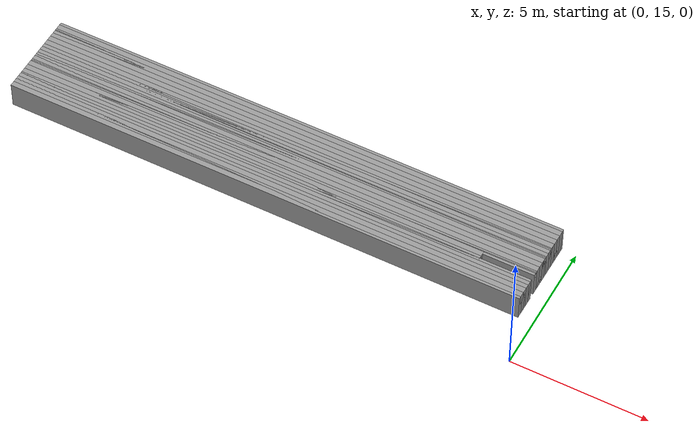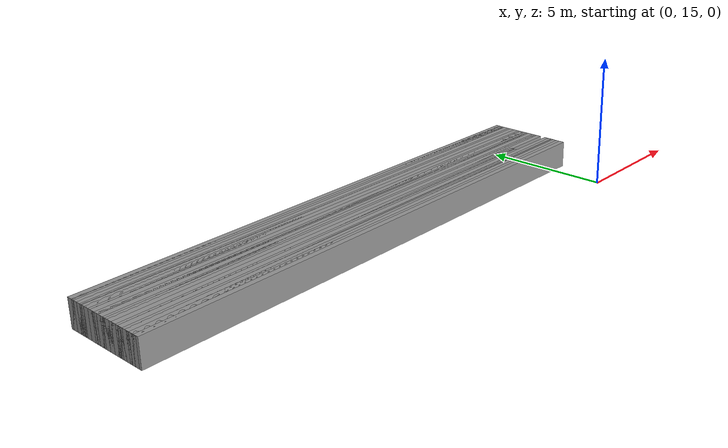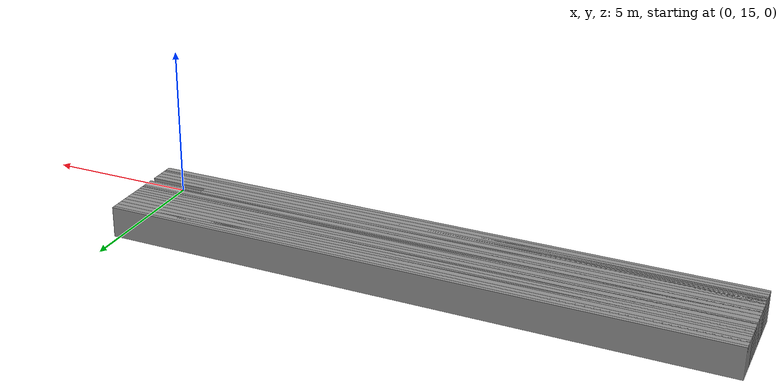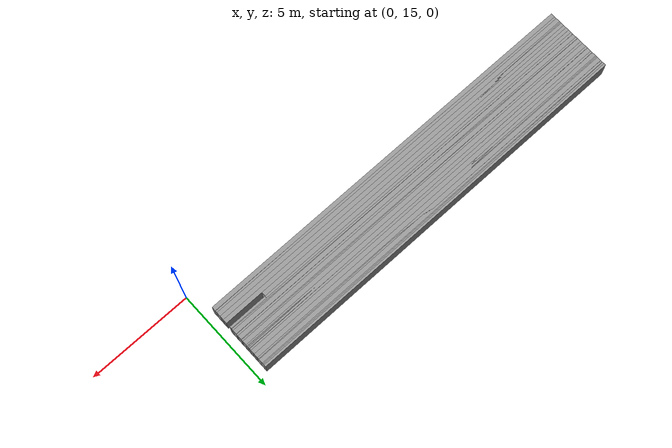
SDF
<sdf version="1.6">
 <world name="GridMap">
  <model name="GridMap">
   <link name="Wall_(101.5,165.0)">
    <collision name="Wall_(101.5,165.0)_Collision">
     <geometry><box><size>19.5 0.2 1.0</size></box></geometry>
     <pose>-10.15 16.5 0.5 0 -0 0</pose>
    </collision>
    <visual name="Wall_(101.5,165.0)_Visual">
     <geometry><box><size>19.5 0.2 1.0</size></box></geometry>
     <pose>-10.15 16.5 0.5 0 -0 0</pose>
     <material>
      <script><uri>file://media/materials/scripts/gazebo.material</uri><name>Gazebo/Grey</name></script>
      <ambient>1 1 1 1</ambient>
     </material>
     <meta><layer>0</layer></meta>
    </visual>
    <pose>0 0 0.5 0 -0 0</pose>
   </link>
   <link name="Wall_(101.5,166.0)">
    <collision name="Wall_(101.5,166.0)_Collision">
     <geometry><box><size>19.5 0.2 1.0</size></box></geometry>
     <pose>-10.15 16.6 0.5 0 -0 0</pose>
    </collision>
    <visual name="Wall_(101.5,166.0)_Visual">
     <geometry><box><size>19.5 0.2 1.0</size></box></geometry>
     <pose>-10.15 16.6 0.5 0 -0 0</pose>
     <material>
      <script><uri>file://media/materials/scripts/gazebo.material</uri><name>Gazebo/Grey</name></script>
      <ambient>1 1 1 1</ambient>
     </material>
     <meta><layer>0</layer></meta>
    </visual>
    <pose>0 0 0.5 0 -0 0</pose>
   </link>
   <link name="Wall_(101.5,167.0)">
    <collision name="Wall_(101.5,167.0)_Collision">
     <geometry><box><size>19.5 0.2 1.0</size></box></geometry>
     <pose>-10.15 16.7 0.5 0 -0 0</pose>
    </collision>
    <visual name="Wall_(101.5,167.0)_Visual">
     <geometry><box><size>19.5 0.2 1.0</size></box></geometry>
     <pose>-10.15 16.7 0.5 0 -0 0</pose>
     <material>
      <script><uri>file://media/materials/scripts/gazebo.material</uri><name>Gazebo/Grey</name></script>
      <ambient>1 1 1 1</ambient>
     </material>
     <meta><layer>0</layer></meta>
    </visual>
    <pose>0 0 0.5 0 -0 0</pose>
   </link>
   <link name="Wall_(101.5,168.0)">
    <collision name="Wall_(101.5,168.0)_Collision">
     <geometry><box><size>19.5 0.2 1.0</size></box></geometry>
     <pose>-10.15 16.8 0.5 0 -0 0</pose>
    </collision>
    <visual name="Wall_(101.5,168.0)_Visual">
     <geometry><box><size>19.5 0.2 1.0</size></box></geometry>
     <pose>-10.15 16.8 0.5 0 -0 0</pose>
     <material>
      <script><uri>file://media/materials/scripts/gazebo.material</uri><name>Gazebo/Grey</name></script>
      <ambient>1 1 1 1</ambient>
     </material>
     <meta><layer>0</layer></meta>
    </visual>
    <pose>0 0 0.5 0 -0 0</pose>
   </link>
   <link name="Wall_(101.5,169.0)">
    <collision name="Wall_(101.5,169.0)_Collision">
     <geometry><box><size>19.5 0.2 1.0</size></box></geometry>
     <pose>-10.15 16.900000000000002 0.5 0 -0 0</pose>
    </collision>
    <visual name="Wall_(101.5,169.0)_Visual">
     <geometry><box><size>19.5 0.2 1.0</size></box></geometry>
     <pose>-10.15 16.900000000000002 0.5 0 -0 0</pose>
     <material>
      <script><uri>file://media/materials/scripts/gazebo.material</uri><name>Gazebo/Grey</name></script>
      <ambient>1 1 1 1</ambient>
     </material>
     <meta><layer>0</layer></meta>
    </visual>
    <pose>0 0 0.5 0 -0 0</pose>
   </link>
   <link name="Wall_(101.5,170.0)">
    <collision name="Wall_(101.5,170.0)_Collision">
     <geometry><box><size>19.5 0.2 1.0</size></box></geometry>
     <pose>-10.15 17.0 0.5 0 -0 0</pose>
    </collision>
    <visual name="Wall_(101.5,170.0)_Visual">
     <geometry><box><size>19.5 0.2 1.0</size></box></geometry>
     <pose>-10.15 17.0 0.5 0 -0 0</pose>
     <material>
      <script><uri>file://media/materials/scripts/gazebo.material</uri><name>Gazebo/Grey</name></script>
      <ambient>1 1 1 1</ambient>
     </material>
     <meta><layer>0</layer></meta>
    </visual>
    <pose>0 0 0.5 0 -0 0</pose>
   </link>
   <link name="Wall_(101.5,171.0)">
    <collision name="Wall_(101.5,171.0)_Collision">
     <geometry><box><size>19.5 0.2 1.0</size></box></geometry>
     <pose>-10.15 17.1 0.5 0 -0 0</pose>
    </collision>
    <visual name="Wall_(101.5,171.0)_Visual">
     <geometry><box><size>19.5 0.2 1.0</size></box></geometry>
     <pose>-10.15 17.1 0.5 0 -0 0</pose>
     <material>
      <script><uri>file://media/materials/scripts/gazebo.material</uri><name>Gazebo/Grey</name></script>
      <ambient>1 1 1 1</ambient>
     </material>
     <meta><layer>0</layer></meta>
    </visual>
    <pose>0 0 0.5 0 -0 0</pose>
   </link>
   <link name="Wall_(101.5,172.0)">
    <collision name="Wall_(101.5,172.0)_Collision">
     <geometry><box><size>19.5 0.2 1.0</size></box></geometry>
     <pose>-10.15 17.2 0.5 0 -0 0</pose>
    </collision>
    <visual name="Wall_(101.5,172.0)_Visual">
     <geometry><box><size>19.5 0.2 1.0</size></box></geometry>
     <pose>-10.15 17.2 0.5 0 -0 0</pose>
     <material>
      <script><uri>file://media/materials/scripts/gazebo.material</uri><name>Gazebo/Grey</name></script>
      <ambient>1 1 1 1</ambient>
     </material>
     <meta><layer>0</layer></meta>
    </visual>
    <pose>0 0 0.5 0 -0 0</pose>
   </link>
   <link name="Wall_(111.0,173.0)">
    <collision name="Wall_(111.0,173.0)_Collision">
     <geometry><box><size>17.6 0.2 1.0</size></box></geometry>
     <pose>-11.100000000000001 17.3 0.5 0 -0 0</pose>
    </collision>
    <visual name="Wall_(111.0,173.0)_Visual">
     <geometry><box><size>17.6 0.2 1.0</size></box></geometry>
     <pose>-11.100000000000001 17.3 0.5 0 -0 0</pose>
     <material>
      <script><uri>file://media/materials/scripts/gazebo.material</uri><name>Gazebo/Grey</name></script>
      <ambient>1 1 1 1</ambient>
     </material>
     <meta><layer>0</layer></meta>
    </visual>
    <pose>0 0 0.5 0 -0 0</pose>
   </link>
   <link name="Wall_(111.0,174.0)">
    <collision name="Wall_(111.0,174.0)_Collision">
     <geometry><box><size>17.6 0.2 1.0</size></box></geometry>
     <pose>-11.100000000000001 17.400000000000002 0.5 0 -0 0</pose>
    </collision>
    <visual name="Wall_(111.0,174.0)_Visual">
     <geometry><box><size>17.6 0.2 1.0</size></box></geometry>
     <pose>-11.100000000000001 17.400000000000002 0.5 0 -0 0</pose>
     <material>
      <script><uri>file://media/materials/scripts/gazebo.material</uri><name>Gazebo/Grey</name></script>
      <ambient>1 1 1 1</ambient>
     </material>
     <meta><layer>0</layer></meta>
    </visual>
    <pose>0 0 0.5 0 -0 0</pose>
   </link>
   <link name="Wall_(111.0,175.0)">
    <collision name="Wall_(111.0,175.0)_Collision">
     <geometry><box><size>17.6 0.2 1.0</size></box></geometry>
     <pose>-11.100000000000001 17.5 0.5 0 -0 0</pose>
    </collision>
    <visual name="Wall_(111.0,175.0)_Visual">
     <geometry><box><size>17.6 0.2 1.0</size></box></geometry>
     <pose>-11.100000000000001 17.5 0.5 0 -0 0</pose>
     <material>
      <script><uri>file://media/materials/scripts/gazebo.material</uri><name>Gazebo/Grey</name></script>
      <ambient>1 1 1 1</ambient>
     </material>
     <meta><layer>0</layer></meta>
    </visual>
    <pose>0 0 0.5 0 -0 0</pose>
   </link>
   <link name="Wall_(101.5,176.0)">
    <collision name="Wall_(101.5,176.0)_Collision">
     <geometry><box><size>19.5 0.2 1.0</size></box></geometry>
     <pose>-10.15 17.6 0.5 0 -0 0</pose>
    </collision>
    <visual name="Wall_(101.5,176.0)_Visual">
     <geometry><box><size>19.5 0.2 1.0</size></box></geometry>
     <pose>-10.15 17.6 0.5 0 -0 0</pose>
     <material>
      <script><uri>file://media/materials/scripts/gazebo.material</uri><name>Gazebo/Grey</name></script>
      <ambient>1 1 1 1</ambient>
     </material>
     <meta><layer>0</layer></meta>
    </visual>
    <pose>0 0 0.5 0 -0 0</pose>
   </link>
   <link name="Wall_(101.5,177.0)">
    <collision name="Wall_(101.5,177.0)_Collision">
     <geometry><box><size>19.5 0.2 1.0</size></box></geometry>
     <pose>-10.15 17.7 0.5 0 -0 0</pose>
    </collision>
    <visual name="Wall_(101.5,177.0)_Visual">
     <geometry><box><size>19.5 0.2 1.0</size></box></geometry>
     <pose>-10.15 17.7 0.5 0 -0 0</pose>
     <material>
      <script><uri>file://media/materials/scripts/gazebo.material</uri><name>Gazebo/Grey</name></script>
      <ambient>1 1 1 1</ambient>
     </material>
     <meta><layer>0</layer></meta>
    </visual>
    <pose>0 0 0.5 0 -0 0</pose>
   </link>
   <link name="Wall_(101.5,178.0)">
    <collision name="Wall_(101.5,178.0)_Collision">
     <geometry><box><size>19.5 0.2 1.0</size></box></geometry>
     <pose>-10.15 17.8 0.5 0 -0 0</pose>
    </collision>
    <visual name="Wall_(101.5,178.0)_Visual">
     <geometry><box><size>19.5 0.2 1.0</size></box></geometry>
     <pose>-10.15 17.8 0.5 0 -0 0</pose>
     <material>
      <script><uri>file://media/materials/scripts/gazebo.material</uri><name>Gazebo/Grey</name></script>
      <ambient>1 1 1 1</ambient>
     </material>
     <meta><layer>0</layer></meta>
    </visual>
    <pose>0 0 0.5 0 -0 0</pose>
   </link>
   <link name="Wall_(101.5,179.0)">
    <collision name="Wall_(101.5,179.0)_Collision">
     <geometry><box><size>19.5 0.2 1.0</size></box></geometry>
     <pose>-10.15 17.900000000000002 0.5 0 -0 0</pose>
    </collision>
    <visual name="Wall_(101.5,179.0)_Visual">
     <geometry><box><size>19.5 0.2 1.0</size></box></geometry>
     <pose>-10.15 17.900000000000002 0.5 0 -0 0</pose>
     <material>
      <script><uri>file://media/materials/scripts/gazebo.material</uri><name>Gazebo/Grey</name></script>
      <ambient>1 1 1 1</ambient>
     </material>
     <meta><layer>0</layer></meta>
    </visual>
    <pose>0 0 0.5 0 -0 0</pose>
   </link>
   <link name="Wall_(101.5,180.0)">
    <collision name="Wall_(101.5,180.0)_Collision">
     <geometry><box><size>19.5 0.2 1.0</size></box></geometry>
     <pose>-10.15 18.0 0.5 0 -0 0</pose>
    </collision>
    <visual name="Wall_(101.5,180.0)_Visual">
     <geometry><box><size>19.5 0.2 1.0</size></box></geometry>
     <pose>-10.15 18.0 0.5 0 -0 0</pose>
     <material>
      <script><uri>file://media/materials/scripts/gazebo.material</uri><name>Gazebo/Grey</name></script>
      <ambient>1 1 1 1</ambient>
     </material>
     <meta><layer>0</layer></meta>
    </visual>
    <pose>0 0 0.5 0 -0 0</pose>
   </link>
   <link name="Wall_(101.5,181.0)">
    <collision name="Wall_(101.5,181.0)_Collision">
     <geometry><box><size>19.5 0.2 1.0</size></box></geometry>
     <pose>-10.15 18.1 0.5 0 -0 0</pose>
    </collision>
    <visual name="Wall_(101.5,181.0)_Visual">
     <geometry><box><size>19.5 0.2 1.0</size></box></geometry>
     <pose>-10.15 18.1 0.5 0 -0 0</pose>
     <material>
      <script><uri>file://media/materials/scripts/gazebo.material</uri><name>Gazebo/Grey</name></script>
      <ambient>1 1 1 1</ambient>
     </material>
     <meta><layer>0</layer></meta>
    </visual>
    <pose>0 0 0.5 0 -0 0</pose>
   </link>
   <link name="Wall_(101.5,182.0)">
    <collision name="Wall_(101.5,182.0)_Collision">
     <geometry><box><size>19.5 0.2 1.0</size></box></geometry>
     <pose>-10.15 18.2 0.5 0 -0 0</pose>
    </collision>
    <visual name="Wall_(101.5,182.0)_Visual">
     <geometry><box><size>19.5 0.2 1.0</size></box></geometry>
     <pose>-10.15 18.2 0.5 0 -0 0</pose>
     <material>
      <script><uri>file://media/materials/scripts/gazebo.material</uri><name>Gazebo/Grey</name></script>
      <ambient>1 1 1 1</ambient>
     </material>
     <meta><layer>0</layer></meta>
    </visual>
    <pose>0 0 0.5 0 -0 0</pose>
   </link>
   <link name="Wall_(101.5,183.0)">
    <collision name="Wall_(101.5,183.0)_Collision">
     <geometry><box><size>19.5 0.2 1.0</size></box></geometry>
     <pose>-10.15 18.3 0.5 0 -0 0</pose>
    </collision>
    <visual name="Wall_(101.5,183.0)_Visual">
     <geometry><box><size>19.5 0.2 1.0</size></box></geometry>
     <pose>-10.15 18.3 0.5 0 -0 0</pose>
     <material>
      <script><uri>file://media/materials/scripts/gazebo.material</uri><name>Gazebo/Grey</name></script>
      <ambient>1 1 1 1</ambient>
     </material>
     <meta><layer>0</layer></meta>
    </visual>
    <pose>0 0 0.5 0 -0 0</pose>
   </link>
   <link name="Wall_(101.5,184.0)">
    <collision name="Wall_(101.5,184.0)_Collision">
     <geometry><box><size>19.5 0.2 1.0</size></box></geometry>
     <pose>-10.15 18.400000000000002 0.5 0 -0 0</pose>
    </collision>
    <visual name="Wall_(101.5,184.0)_Visual">
     <geometry><box><size>19.5 0.2 1.0</size></box></geometry>
     <pose>-10.15 18.400000000000002 0.5 0 -0 0</pose>
     <material>
      <script><uri>file://media/materials/scripts/gazebo.material</uri><name>Gazebo/Grey</name></script>
      <ambient>1 1 1 1</ambient>
     </material>
     <meta><layer>0</layer></meta>
    </visual>
    <pose>0 0 0.5 0 -0 0</pose>
   </link>
   <link name="Wall_(101.5,185.0)">
    <collision name="Wall_(101.5,185.0)_Collision">
     <geometry><box><size>19.5 0.2 1.0</size></box></geometry>
     <pose>-10.15 18.5 0.5 0 -0 0</pose>
    </collision>
    <visual name="Wall_(101.5,185.0)_Visual">
     <geometry><box><size>19.5 0.2 1.0</size></box></geometry>
     <pose>-10.15 18.5 0.5 0 -0 0</pose>
     <material>
      <script><uri>file://media/materials/scripts/gazebo.material</uri><name>Gazebo/Grey</name></script>
      <ambient>1 1 1 1</ambient>
     </material>
     <meta><layer>0</layer></meta>
    </visual>
    <pose>0 0 0.5 0 -0 0</pose>
   </link>
   <link name="Wall_(101.5,186.0)">
    <collision name="Wall_(101.5,186.0)_Collision">
     <geometry><box><size>19.5 0.2 1.0</size></box></geometry>
     <pose>-10.15 18.6 0.5 0 -0 0</pose>
    </collision>
    <visual name="Wall_(101.5,186.0)_Visual">
     <geometry><box><size>19.5 0.2 1.0</size></box></geometry>
     <pose>-10.15 18.6 0.5 0 -0 0</pose>
     <material>
      <script><uri>file://media/materials/scripts/gazebo.material</uri><name>Gazebo/Grey</name></script>
      <ambient>1 1 1 1</ambient>
     </material>
     <meta><layer>0</layer></meta>
    </visual>
    <pose>0 0 0.5 0 -0 0</pose>
   </link>
   <link name="Wall_(101.5,187.0)">
    <collision name="Wall_(101.5,187.0)_Collision">
     <geometry><box><size>19.5 0.2 1.0</size></box></geometry>
     <pose>-10.15 18.7 0.5 0 -0 0</pose>
    </collision>
    <visual name="Wall_(101.5,187.0)_Visual">
     <geometry><box><size>19.5 0.2 1.0</size></box></geometry>
     <pose>-10.15 18.7 0.5 0 -0 0</pose>
     <material>
      <script><uri>file://media/materials/scripts/gazebo.material</uri><name>Gazebo/Grey</name></script>
      <ambient>1 1 1 1</ambient>
     </material>
     <meta><layer>0</layer></meta>
    </visual>
    <pose>0 0 0.5 0 -0 0</pose>
   </link>
   <link name="Wall_(101.5,188.0)">
    <collision name="Wall_(101.5,188.0)_Collision">
     <geometry><box><size>19.5 0.2 1.0</size></box></geometry>
     <pose>-10.15 18.8 0.5 0 -0 0</pose>
    </collision>
    <visual name="Wall_(101.5,188.0)_Visual">
     <geometry><box><size>19.5 0.2 1.0</size></box></geometry>
     <pose>-10.15 18.8 0.5 0 -0 0</pose>
     <material>
      <script><uri>file://media/materials/scripts/gazebo.material</uri><name>Gazebo/Grey</name></script>
      <ambient>1 1 1 1</ambient>
     </material>
     <meta><layer>0</layer></meta>
    </visual>
    <pose>0 0 0.5 0 -0 0</pose>
   </link>
   <link name="Wall_(101.5,189.0)">
    <collision name="Wall_(101.5,189.0)_Collision">
     <geometry><box><size>19.5 0.2 1.0</size></box></geometry>
     <pose>-10.15 18.900000000000002 0.5 0 -0 0</pose>
    </collision>
    <visual name="Wall_(101.5,189.0)_Visual">
     <geometry><box><size>19.5 0.2 1.0</size></box></geometry>
     <pose>-10.15 18.900000000000002 0.5 0 -0 0</pose>
     <material>
      <script><uri>file://media/materials/scripts/gazebo.material</uri><name>Gazebo/Grey</name></script>
      <ambient>1 1 1 1</ambient>
     </material>
     <meta><layer>0</layer></meta>
    </visual>
    <pose>0 0 0.5 0 -0 0</pose>
   </link>
   <link name="Wall_(101.5,190.0)">
    <collision name="Wall_(101.5,190.0)_Collision">
     <geometry><box><size>19.5 0.2 1.0</size></box></geometry>
     <pose>-10.15 19.0 0.5 0 -0 0</pose>
    </collision>
    <visual name="Wall_(101.5,190.0)_Visual">
     <geometry><box><size>19.5 0.2 1.0</size></box></geometry>
     <pose>-10.15 19.0 0.5 0 -0 0</pose>
     <material>
      <script><uri>file://media/materials/scripts/gazebo.material</uri><name>Gazebo/Grey</name></script>
      <ambient>1 1 1 1</ambient>
     </material>
     <meta><layer>0</layer></meta>
    </visual>
    <pose>0 0 0.5 0 -0 0</pose>
   </link>
   <link name="Wall_(101.5,191.0)">
    <collision name="Wall_(101.5,191.0)_Collision">
     <geometry><box><size>19.5 0.2 1.0</size></box></geometry>
     <pose>-10.15 19.1 0.5 0 -0 0</pose>
    </collision>
    <visual name="Wall_(101.5,191.0)_Visual">
     <geometry><box><size>19.5 0.2 1.0</size></box></geometry>
     <pose>-10.15 19.1 0.5 0 -0 0</pose>
     <material>
      <script><uri>file://media/materials/scripts/gazebo.material</uri><name>Gazebo/Grey</name></script>
      <ambient>1 1 1 1</ambient>
     </material>
     <meta><layer>0</layer></meta>
    </visual>
    <pose>0 0 0.5 0 -0 0</pose>
   </link>
   <link name="Wall_(101.5,192.0)">
    <collision name="Wall_(101.5,192.0)_Collision">
     <geometry><box><size>19.5 0.2 1.0</size></box></geometry>
     <pose>-10.15 19.200000000000003 0.5 0 -0 0</pose>
    </collision>
    <visual name="Wall_(101.5,192.0)_Visual">
     <geometry><box><size>19.5 0.2 1.0</size></box></geometry>
     <pose>-10.15 19.200000000000003 0.5 0 -0 0</pose>
     <material>
      <script><uri>file://media/materials/scripts/gazebo.material</uri><name>Gazebo/Grey</name></script>
      <ambient>1 1 1 1</ambient>
     </material>
     <meta><layer>0</layer></meta>
    </visual>
    <pose>0 0 0.5 0 -0 0</pose>
   </link>
   <link name="Wall_(101.5,193.0)">
    <collision name="Wall_(101.5,193.0)_Collision">
     <geometry><box><size>19.5 0.2 1.0</size></box></geometry>
     <pose>-10.15 19.3 0.5 0 -0 0</pose>
    </collision>
    <visual name="Wall_(101.5,193.0)_Visual">
     <geometry><box><size>19.5 0.2 1.0</size></box></geometry>
     <pose>-10.15 19.3 0.5 0 -0 0</pose>
     <material>
      <script><uri>file://media/materials/scripts/gazebo.material</uri><name>Gazebo/Grey</name></script>
      <ambient>1 1 1 1</ambient>
     </material>
     <meta><layer>0</layer></meta>
    </visual>
    <pose>0 0 0.5 0 -0 0</pose>
   </link>
   <link name="Wall_(101.5,194.0)">
    <collision name="Wall_(101.5,194.0)_Collision">
     <geometry><box><size>19.5 0.2 1.0</size></box></geometry>
     <pose>-10.15 19.400000000000002 0.5 0 -0 0</pose>
    </collision>
    <visual name="Wall_(101.5,194.0)_Visual">
     <geometry><box><size>19.5 0.2 1.0</size></box></geometry>
     <pose>-10.15 19.400000000000002 0.5 0 -0 0</pose>
     <material>
      <script><uri>file://media/materials/scripts/gazebo.material</uri><name>Gazebo/Grey</name></script>
      <ambient>1 1 1 1</ambient>
     </material>
     <meta><layer>0</layer></meta>
    </visual>
    <pose>0 0 0.5 0 -0 0</pose>
   </link>
   <link name="Wall_(101.5,195.0)">
    <collision name="Wall_(101.5,195.0)_Collision">
     <geometry><box><size>19.5 0.2 1.0</size></box></geometry>
     <pose>-10.15 19.5 0.5 0 -0 0</pose>
    </collision>
    <visual name="Wall_(101.5,195.0)_Visual">
     <geometry><box><size>19.5 0.2 1.0</size></box></geometry>
     <pose>-10.15 19.5 0.5 0 -0 0</pose>
     <material>
      <script><uri>file://media/materials/scripts/gazebo.material</uri><name>Gazebo/Grey</name></script>
      <ambient>1 1 1 1</ambient>
     </material>
     <meta><layer>0</layer></meta>
    </visual>
    <pose>0 0 0.5 0 -0 0</pose>
   </link>
   <link name="Wall_(101.5,196.0)">
    <collision name="Wall_(101.5,196.0)_Collision">
     <geometry><box><size>19.5 0.2 1.0</size></box></geometry>
     <pose>-10.15 19.6 0.5 0 -0 0</pose>
    </collision>
    <visual name="Wall_(101.5,196.0)_Visual">
     <geometry><box><size>19.5 0.2 1.0</size></box></geometry>
     <pose>-10.15 19.6 0.5 0 -0 0</pose>
     <material>
      <script><uri>file://media/materials/scripts/gazebo.material</uri><name>Gazebo/Grey</name></script>
      <ambient>1 1 1 1</ambient>
     </material>
     <meta><layer>0</layer></meta>
    </visual>
    <pose>0 0 0.5 0 -0 0</pose>
   </link>
   <static>1</static>
  </model>
 </world>
</sdf>
